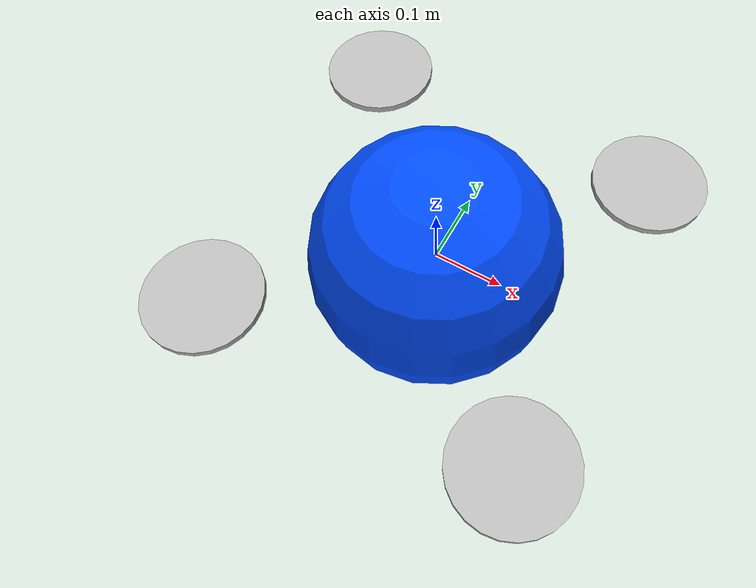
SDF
<?xml version="1.0" ?>
<sdf version="1.8">
  <model name="uav1">
    <pose>0 0 0 0 0 0</pose>
    <static>false</static>
    <self_collide>false</self_collide>

    <link name="base_link">
      <pose>0 0 0 0 0 0</pose>
      <inertial>
        <mass>1.2</mass>
        <inertia>
          <ixx>0.02</ixx>
          <iyy>0.02</iyy>
          <izz>0.04</izz>
        </inertia>
      </inertial>
      <collision name="collision">
        <geometry>
          <sphere>
            <radius>0.18</radius>
          </sphere>
        </geometry>
      </collision>
      <visual name="body_visual">
        <geometry>
          <sphere>
            <radius>0.18</radius>
          </sphere>
        </geometry>
        <material>
          <ambient>0.0 0.2 1.0 1</ambient>
          <diffuse>0.0 0.3 1.0 1</diffuse>
          <emissive>0.0 0.1 0.5 1</emissive>
        </material>
      </visual>
      <sensor name="lidar" type="gpu_lidar">
        <pose>0 0 0 0 0 0</pose>
        <topic>uav1/lidar</topic>
        <update_rate>15</update_rate>
        <ray>
          <scan>
            <horizontal>
              <samples>36</samples>
              <resolution>1</resolution>
              <min_angle>-3.14159</min_angle>
              <max_angle>3.14159</max_angle>
            </horizontal>
          </scan>
          <range>
            <min>0.2</min>
            <max>15.0</max>
            <resolution>0.01</resolution>
          </range>
        </ray>
        <always_on>1</always_on>
        <visualize>false</visualize>
      </sensor>
    </link>

    <link name="rotor_0">
      <pose>0.22 0.22 0.05 0 0 0</pose>
      <inertial>
        <mass>0.03</mass>
        <inertia>
          <ixx>1e-5</ixx>
          <iyy>1e-5</iyy>
          <izz>2e-5</izz>
        </inertia>
      </inertial>
      <visual name="visual">
        <geometry>
          <cylinder>
            <radius>0.08</radius>
            <length>0.01</length>
          </cylinder>
        </geometry>
      </visual>
    </link>
    <link name="rotor_1">
      <pose>-0.22 0.22 0.05 0 0 0</pose>
      <inertial>
        <mass>0.03</mass>
        <inertia>
          <ixx>1e-5</ixx>
          <iyy>1e-5</iyy>
          <izz>2e-5</izz>
        </inertia>
      </inertial>
      <visual name="visual">
        <geometry>
          <cylinder>
            <radius>0.08</radius>
            <length>0.01</length>
          </cylinder>
        </geometry>
      </visual>
    </link>
    <link name="rotor_2">
      <pose>-0.22 -0.22 0.05 0 0 0</pose>
      <inertial>
        <mass>0.03</mass>
        <inertia>
          <ixx>1e-5</ixx>
          <iyy>1e-5</iyy>
          <izz>2e-5</izz>
        </inertia>
      </inertial>
      <visual name="visual">
        <geometry>
          <cylinder>
            <radius>0.08</radius>
            <length>0.01</length>
          </cylinder>
        </geometry>
      </visual>
    </link>
    <link name="rotor_3">
      <pose>0.22 -0.22 0.05 0 0 0</pose>
      <inertial>
        <mass>0.03</mass>
        <inertia>
          <ixx>1e-5</ixx>
          <iyy>1e-5</iyy>
          <izz>2e-5</izz>
        </inertia>
      </inertial>
      <visual name="visual">
        <geometry>
          <cylinder>
            <radius>0.08</radius>
            <length>0.01</length>
          </cylinder>
        </geometry>
      </visual>
    </link>

    <joint name="rotor_0_joint" type="revolute">
      <parent>base_link</parent>
      <child>rotor_0</child>
      <axis>
        <xyz>0 0 1</xyz>
        <limit>
          <lower>-1e16</lower>
          <upper>1e16</upper>
        </limit>
      </axis>
    </joint>
    <joint name="rotor_1_joint" type="revolute">
      <parent>base_link</parent>
      <child>rotor_1</child>
      <axis>
        <xyz>0 0 1</xyz>
        <limit>
          <lower>-1e16</lower>
          <upper>1e16</upper>
        </limit>
      </axis>
    </joint>
    <joint name="rotor_2_joint" type="revolute">
      <parent>base_link</parent>
      <child>rotor_2</child>
      <axis>
        <xyz>0 0 1</xyz>
        <limit>
          <lower>-1e16</lower>
          <upper>1e16</upper>
        </limit>
      </axis>
    </joint>
    <joint name="rotor_3_joint" type="revolute">
      <parent>base_link</parent>
      <child>rotor_3</child>
      <axis>
        <xyz>0 0 1</xyz>
        <limit>
          <lower>-1e16</lower>
          <upper>1e16</upper>
        </limit>
      </axis>
    </joint>

    <plugin filename="gz-sim-multicopter-motor-model-system" name="gz::sim::systems::MulticopterMotorModel">
      <robotNamespace>uav1</robotNamespace>
      <jointName>rotor_0_joint</jointName>
      <linkName>rotor_0</linkName>
      <turningDirection>ccw</turningDirection>
      <timeConstantUp>0.0182</timeConstantUp>
      <timeConstantDown>0.0182</timeConstantDown>
      <maxRotVelocity>1000.0</maxRotVelocity>
      <motorConstant>1.269e-05</motorConstant>
      <momentConstant>0.016754</momentConstant>
      <commandSubTopic>command/motor_speed</commandSubTopic>
      <actuator_number>0</actuator_number>
      <rotorDragCoefficient>2.0673e-04</rotorDragCoefficient>
      <rollingMomentCoefficient>0</rollingMomentCoefficient>
      <motorSpeedPubTopic>motor_speed/0</motorSpeedPubTopic>
      <rotorVelocitySlowdownSim>2</rotorVelocitySlowdownSim>
      <motorType>velocity</motorType>
    </plugin>
    <plugin filename="gz-sim-multicopter-motor-model-system" name="gz::sim::systems::MulticopterMotorModel">
      <robotNamespace>uav1</robotNamespace>
      <jointName>rotor_1_joint</jointName>
      <linkName>rotor_1</linkName>
      <turningDirection>cw</turningDirection>
      <timeConstantUp>0.0182</timeConstantUp>
      <timeConstantDown>0.0182</timeConstantDown>
      <maxRotVelocity>1000.0</maxRotVelocity>
      <motorConstant>1.269e-05</motorConstant>
      <momentConstant>0.016754</momentConstant>
      <commandSubTopic>command/motor_speed</commandSubTopic>
      <actuator_number>1</actuator_number>
      <rotorDragCoefficient>2.0673e-04</rotorDragCoefficient>
      <rollingMomentCoefficient>0</rollingMomentCoefficient>
      <motorSpeedPubTopic>motor_speed/1</motorSpeedPubTopic>
      <rotorVelocitySlowdownSim>2</rotorVelocitySlowdownSim>
      <motorType>velocity</motorType>
    </plugin>
    <plugin filename="gz-sim-multicopter-motor-model-system" name="gz::sim::systems::MulticopterMotorModel">
      <robotNamespace>uav1</robotNamespace>
      <jointName>rotor_2_joint</jointName>
      <linkName>rotor_2</linkName>
      <turningDirection>ccw</turningDirection>
      <timeConstantUp>0.0182</timeConstantUp>
      <timeConstantDown>0.0182</timeConstantDown>
      <maxRotVelocity>1000.0</maxRotVelocity>
      <motorConstant>1.269e-05</motorConstant>
      <momentConstant>0.016754</momentConstant>
      <commandSubTopic>command/motor_speed</commandSubTopic>
      <actuator_number>2</actuator_number>
      <rotorDragCoefficient>2.0673e-04</rotorDragCoefficient>
      <rollingMomentCoefficient>0</rollingMomentCoefficient>
      <motorSpeedPubTopic>motor_speed/2</motorSpeedPubTopic>
      <rotorVelocitySlowdownSim>2</rotorVelocitySlowdownSim>
      <motorType>velocity</motorType>
    </plugin>
    <plugin filename="gz-sim-multicopter-motor-model-system" name="gz::sim::systems::MulticopterMotorModel">
      <robotNamespace>uav1</robotNamespace>
      <jointName>rotor_3_joint</jointName>
      <linkName>rotor_3</linkName>
      <turningDirection>cw</turningDirection>
      <timeConstantUp>0.0182</timeConstantUp>
      <timeConstantDown>0.0182</timeConstantDown>
      <maxRotVelocity>1000.0</maxRotVelocity>
      <motorConstant>1.269e-05</motorConstant>
      <momentConstant>0.016754</momentConstant>
      <commandSubTopic>command/motor_speed</commandSubTopic>
      <actuator_number>3</actuator_number>
      <rotorDragCoefficient>2.0673e-04</rotorDragCoefficient>
      <rollingMomentCoefficient>0</rollingMomentCoefficient>
      <motorSpeedPubTopic>motor_speed/3</motorSpeedPubTopic>
      <rotorVelocitySlowdownSim>2</rotorVelocitySlowdownSim>
      <motorType>velocity</motorType>
    </plugin>
    <plugin filename="gz-sim-multicopter-control-system" name="gz::sim::systems::MulticopterVelocityControl">
      <robotNamespace>uav1</robotNamespace>
      <commandSubTopic>cmd_vel</commandSubTopic>
      <comLinkName>base_link</comLinkName>
      <velocityGain>2.7 2.7 2.9</velocityGain>
      <attitudeGain>2 2 0.2</attitudeGain>
      <angularRateGain>0.4 0.45 0.18</angularRateGain>
      <maximumLinearAcceleration>2.5 2.5 2.0</maximumLinearAcceleration>
      <rotorConfiguration>
        <rotor>
          <jointName>rotor_0_joint</jointName>
          <forceConstant>1.269e-05</forceConstant>
          <momentConstant>0.016754</momentConstant>
          <direction>1</direction>
        </rotor>
        <rotor>
          <jointName>rotor_1_joint</jointName>
          <forceConstant>1.269e-05</forceConstant>
          <momentConstant>0.016754</momentConstant>
          <direction>-1</direction>
        </rotor>
        <rotor>
          <jointName>rotor_2_joint</jointName>
          <forceConstant>1.269e-05</forceConstant>
          <momentConstant>0.016754</momentConstant>
          <direction>1</direction>
        </rotor>
        <rotor>
          <jointName>rotor_3_joint</jointName>
          <forceConstant>1.269e-05</forceConstant>
          <momentConstant>0.016754</momentConstant>
          <direction>-1</direction>
        </rotor>
      </rotorConfiguration>
    </plugin>
    <plugin filename="gz-sim-odometry-publisher-system" name="gz::sim::systems::OdometryPublisher">
      <dimensions>3</dimensions>
    </plugin>
  </model>
</sdf>
